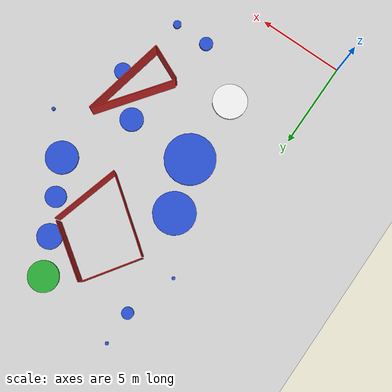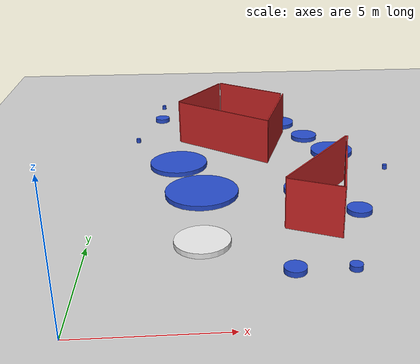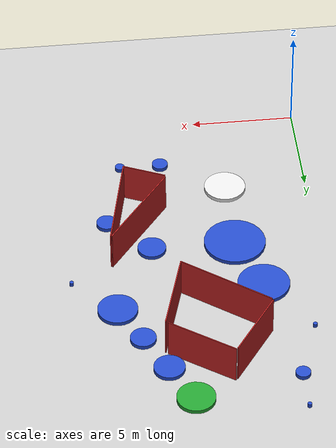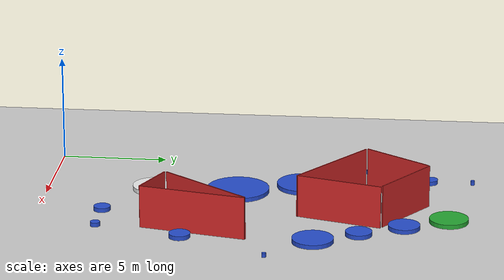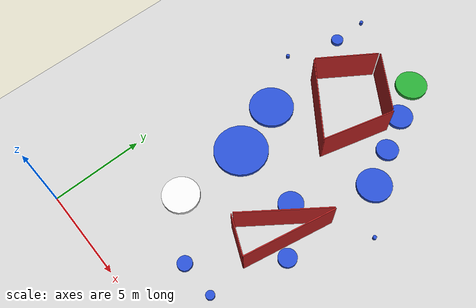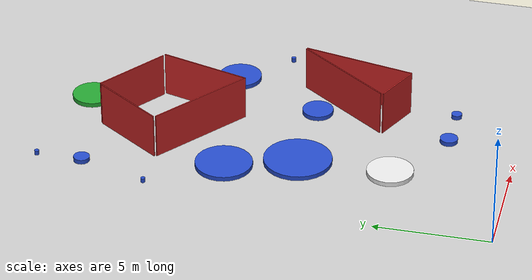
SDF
<?xml version="1.0" ?>
<sdf version="1.5">
  <world name="default">
    <!-- A global light source -->
    <include>
      <uri>model://sun</uri>
    </include>
    <!-- A ground plane -->
    <include>
      <uri>model://ground_plane</uri>
    </include>
    <!-- Camera position -->
    <gui>
      <camera name="user_camera">
        <pose>8.5 11.0 18.0 0.0 1.42 3.14</pose>
      </camera>
    </gui>
    <!-- Ground regions -->
    <model name='region_rA'>
      <pose frame=''>4 5 0.1 0 0 0</pose>
      <link name='link'>
        <collision name='collision'>
          <geometry>
            <cylinder>
              <radius>1.01</radius>
              <length>0.2</length>
            </cylinder>
          </geometry>
        </collision>
        <visual name='visual'>
          <geometry>
            <cylinder>
              <radius>1.01</radius>
              <length>0.2</length>
            </cylinder>
          </geometry>
          <material>
            <script>
              <name>Gazebo/White</name>
              <uri>file://media/materials/scripts/gazebo.material</uri>
            </script>
          </material>
        </visual>
      </link>
    </model>
    <model name='region_rB'>
      <pose frame=''>7 3 0.1 0 0 0</pose>
      <link name='link'>
        <collision name='collision'>
          <geometry>
            <cylinder>
              <radius>0.39</radius>
              <length>0.2</length>
            </cylinder>
          </geometry>
        </collision>
        <visual name='visual'>
          <geometry>
            <cylinder>
              <radius>0.39</radius>
              <length>0.2</length>
            </cylinder>
          </geometry>
          <material>
            <script>
              <name>Gazebo/Blue</name>
              <uri>file://media/materials/scripts/gazebo.material</uri>
            </script>
          </material>
        </visual>
      </link>
    </model>
    <model name='region_rC'>
      <pose frame=''>9 3 0.1 0 0 0</pose>
      <link name='link'>
        <collision name='collision'>
          <geometry>
            <cylinder>
              <radius>0.23</radius>
              <length>0.2</length>
            </cylinder>
          </geometry>
        </collision>
        <visual name='visual'>
          <geometry>
            <cylinder>
              <radius>0.23</radius>
              <length>0.2</length>
            </cylinder>
          </geometry>
          <material>
            <script>
              <name>Gazebo/Blue</name>
              <uri>file://media/materials/scripts/gazebo.material</uri>
            </script>
          </material>
        </visual>
      </link>
    </model>
    <model name='region_rD'>
      <pose frame=''>4 9 0.1 0 0 0</pose>
      <link name='link'>
        <collision name='collision'>
          <geometry>
            <cylinder>
              <radius>1.48</radius>
              <length>0.2</length>
            </cylinder>
          </geometry>
        </collision>
        <visual name='visual'>
          <geometry>
            <cylinder>
              <radius>1.48</radius>
              <length>0.2</length>
            </cylinder>
          </geometry>
          <material>
            <script>
              <name>Gazebo/Blue</name>
              <uri>file://media/materials/scripts/gazebo.material</uri>
            </script>
          </material>
        </visual>
      </link>
    </model>
    <model name='region_rE'>
      <pose frame=''>8 9 0.1 0 0 0</pose>
      <link name='link'>
        <collision name='collision'>
          <geometry>
            <cylinder>
              <radius>0.68</radius>
              <length>0.2</length>
            </cylinder>
          </geometry>
        </collision>
        <visual name='visual'>
          <geometry>
            <cylinder>
              <radius>0.68</radius>
              <length>0.2</length>
            </cylinder>
          </geometry>
          <material>
            <script>
              <name>Gazebo/Blue</name>
              <uri>file://media/materials/scripts/gazebo.material</uri>
            </script>
          </material>
        </visual>
      </link>
    </model>
    <model name='region_rF'>
      <pose frame=''>10 7 0.1 0 0 0</pose>
      <link name='link'>
        <collision name='collision'>
          <geometry>
            <cylinder>
              <radius>0.49</radius>
              <length>0.2</length>
            </cylinder>
          </geometry>
        </collision>
        <visual name='visual'>
          <geometry>
            <cylinder>
              <radius>0.49</radius>
              <length>0.2</length>
            </cylinder>
          </geometry>
          <material>
            <script>
              <name>Gazebo/Blue</name>
              <uri>file://media/materials/scripts/gazebo.material</uri>
            </script>
          </material>
        </visual>
      </link>
    </model>
    <model name='region_rG'>
      <pose frame=''>3 12 0.1 0 0 0</pose>
      <link name='link'>
        <collision name='collision'>
          <geometry>
            <cylinder>
              <radius>1.24</radius>
              <length>0.2</length>
            </cylinder>
          </geometry>
        </collision>
        <visual name='visual'>
          <geometry>
            <cylinder>
              <radius>1.24</radius>
              <length>0.2</length>
            </cylinder>
          </geometry>
          <material>
            <script>
              <name>Gazebo/Blue</name>
              <uri>file://media/materials/scripts/gazebo.material</uri>
            </script>
          </material>
        </visual>
      </link>
    </model>
    <model name='region_rH'>
      <pose frame=''>10 13 0.1 0 0 0</pose>
      <link name='link'>
        <collision name='collision'>
          <geometry>
            <cylinder>
              <radius>0.95</radius>
              <length>0.2</length>
            </cylinder>
          </geometry>
        </collision>
        <visual name='visual'>
          <geometry>
            <cylinder>
              <radius>0.95</radius>
              <length>0.2</length>
            </cylinder>
          </geometry>
          <material>
            <script>
              <name>Gazebo/Blue</name>
              <uri>file://media/materials/scripts/gazebo.material</uri>
            </script>
          </material>
        </visual>
      </link>
    </model>
    <model name='region_rI'>
      <pose frame=''>12 11 0.1 0 0 0</pose>
      <link name='link'>
        <collision name='collision'>
          <geometry>
            <cylinder>
              <radius>0.10</radius>
              <length>0.2</length>
            </cylinder>
          </geometry>
        </collision>
        <visual name='visual'>
          <geometry>
            <cylinder>
              <radius>0.10</radius>
              <length>0.2</length>
            </cylinder>
          </geometry>
          <material>
            <script>
              <name>Gazebo/Blue</name>
              <uri>file://media/materials/scripts/gazebo.material</uri>
            </script>
          </material>
        </visual>
      </link>
    </model>
    <model name='region_rJ'>
      <pose frame=''>1 15 0.1 0 0 0</pose>
      <link name='link'>
        <collision name='collision'>
          <geometry>
            <cylinder>
              <radius>0.10</radius>
              <length>0.2</length>
            </cylinder>
          </geometry>
        </collision>
        <visual name='visual'>
          <geometry>
            <cylinder>
              <radius>0.10</radius>
              <length>0.2</length>
            </cylinder>
          </geometry>
          <material>
            <script>
              <name>Gazebo/Blue</name>
              <uri>file://media/materials/scripts/gazebo.material</uri>
            </script>
          </material>
        </visual>
      </link>
    </model>
    <model name='region_rK'>
      <pose frame=''>9 15 0.1 0 0 0</pose>
      <link name='link'>
        <collision name='collision'>
          <geometry>
            <cylinder>
              <radius>0.61</radius>
              <length>0.2</length>
            </cylinder>
          </geometry>
        </collision>
        <visual name='visual'>
          <geometry>
            <cylinder>
              <radius>0.61</radius>
              <length>0.2</length>
            </cylinder>
          </geometry>
          <material>
            <script>
              <name>Gazebo/Blue</name>
              <uri>file://media/materials/scripts/gazebo.material</uri>
            </script>
          </material>
        </visual>
      </link>
    </model>
    <model name='region_rL'>
      <pose frame=''>2 18 0.1 0 0 0</pose>
      <link name='link'>
        <collision name='collision'>
          <geometry>
            <cylinder>
              <radius>0.35</radius>
              <length>0.2</length>
            </cylinder>
          </geometry>
        </collision>
        <visual name='visual'>
          <geometry>
            <cylinder>
              <radius>0.35</radius>
              <length>0.2</length>
            </cylinder>
          </geometry>
          <material>
            <script>
              <name>Gazebo/Blue</name>
              <uri>file://media/materials/scripts/gazebo.material</uri>
            </script>
          </material>
        </visual>
      </link>
    </model>
    <model name='region_rM'>
      <pose frame=''>8 17 0.1 0 0 0</pose>
      <link name='link'>
        <collision name='collision'>
          <geometry>
            <cylinder>
              <radius>0.73</radius>
              <length>0.2</length>
            </cylinder>
          </geometry>
        </collision>
        <visual name='visual'>
          <geometry>
            <cylinder>
              <radius>0.73</radius>
              <length>0.2</length>
            </cylinder>
          </geometry>
          <material>
            <script>
              <name>Gazebo/Blue</name>
              <uri>file://media/materials/scripts/gazebo.material</uri>
            </script>
          </material>
        </visual>
      </link>
    </model>
    <model name='region_rN'>
      <pose frame=''>2 20 0.1 0 0 0</pose>
      <link name='link'>
        <collision name='collision'>
          <geometry>
            <cylinder>
              <radius>0.10</radius>
              <length>0.2</length>
            </cylinder>
          </geometry>
        </collision>
        <visual name='visual'>
          <geometry>
            <cylinder>
              <radius>0.10</radius>
              <length>0.2</length>
            </cylinder>
          </geometry>
          <material>
            <script>
              <name>Gazebo/Blue</name>
              <uri>file://media/materials/scripts/gazebo.material</uri>
            </script>
          </material>
        </visual>
      </link>
    </model>
    <model name='region_rO'>
      <pose frame=''>7 19 0.1 0 0 0</pose>
      <link name='link'>
        <collision name='collision'>
          <geometry>
            <cylinder>
              <radius>0.90</radius>
              <length>0.2</length>
            </cylinder>
          </geometry>
        </collision>
        <visual name='visual'>
          <geometry>
            <cylinder>
              <radius>0.90</radius>
              <length>0.2</length>
            </cylinder>
          </geometry>
          <material>
            <script>
              <name>Gazebo/Green</name>
              <uri>file://media/materials/scripts/gazebo.material</uri>
            </script>
          </material>
        </visual>
      </link>
    </model>
    <model name='wall_00'>
    <pose frame=''>8.0 5.5 1.0 0 0 1.148</pose>
    <link name='link'>
    <collision name='collision'>
      <geometry>
        <box>
          <size>0.05 2.14 2</size>
        </box>
      </geometry>
    </collision>
    <visual name='visual'>
      <geometry>
        <box>
          <size>0.05 2.14 2</size>
        </box>
      </geometry>
      <material>
        <script>
          <name>Gazebo/Red</name>
          <uri>file://media/materials/scripts/gazebo.material</uri>
        </script>
      </material>
    </visual>
    </link>
    </model>
    <model name='wall_01'>
    <pose frame=''>8.5 8.0 1.0 0 0 -0.643</pose>
    <link name='link'>
    <collision name='collision'>
      <geometry>
        <box>
          <size>0.05 4.90 2</size>
        </box>
      </geometry>
    </collision>
    <visual name='visual'>
      <geometry>
        <box>
          <size>0.05 4.90 2</size>
        </box>
      </geometry>
      <material>
        <script>
          <name>Gazebo/Red</name>
          <uri>file://media/materials/scripts/gazebo.material</uri>
        </script>
      </material>
    </visual>
    </link>
    </model>
    <model name='wall_02'>
    <pose frame=''>9.5 7.5 1.0 0 0 -0.211</pose>
    <link name='link'>
    <collision name='collision'>
      <geometry>
        <box>
          <size>0.05 5.00 2</size>
        </box>
      </geometry>
    </collision>
    <visual name='visual'>
      <geometry>
        <box>
          <size>0.05 5.00 2</size>
        </box>
      </geometry>
      <material>
        <script>
          <name>Gazebo/Red</name>
          <uri>file://media/materials/scripts/gazebo.material</uri>
        </script>
      </material>
    </visual>
    </link>
    </model>
    <model name='wall_10'>
    <pose frame=''>5.0 13.5 1.0 0 0 0.926</pose>
    <link name='link'>
    <collision name='collision'>
      <geometry>
        <box>
          <size>0.05 4.90 2</size>
        </box>
      </geometry>
    </collision>
    <visual name='visual'>
      <geometry>
        <box>
          <size>0.05 4.90 2</size>
        </box>
      </geometry>
      <material>
        <script>
          <name>Gazebo/Red</name>
          <uri>file://media/materials/scripts/gazebo.material</uri>
        </script>
      </material>
    </visual>
    </link>
    </model>
    <model name='wall_11'>
    <pose frame=''>4.0 16.5 1.0 0 0 -0.604</pose>
    <link name='link'>
    <collision name='collision'>
      <geometry>
        <box>
          <size>0.05 3.51 2</size>
        </box>
      </geometry>
    </collision>
    <visual name='visual'>
      <geometry>
        <box>
          <size>0.05 3.51 2</size>
        </box>
      </geometry>
      <material>
        <script>
          <name>Gazebo/Red</name>
          <uri>file://media/materials/scripts/gazebo.material</uri>
        </script>
      </material>
    </visual>
    </link>
    </model>
    <model name='wall_12'>
    <pose frame=''>6.5 17.0 1.0 0 0 0.957</pose>
    <link name='link'>
    <collision name='collision'>
      <geometry>
        <box>
          <size>0.05 3.51 2</size>
        </box>
      </geometry>
    </collision>
    <visual name='visual'>
      <geometry>
        <box>
          <size>0.05 3.51 2</size>
        </box>
      </geometry>
      <material>
        <script>
          <name>Gazebo/Red</name>
          <uri>file://media/materials/scripts/gazebo.material</uri>
        </script>
      </material>
    </visual>
    </link>
    </model>
    <model name='wall_13'>
    <pose frame=''>7.5 14.0 1.0 0 0 -0.282</pose>
    <link name='link'>
    <collision name='collision'>
      <geometry>
        <box>
          <size>0.05 4.02 2</size>
        </box>
      </geometry>
    </collision>
    <visual name='visual'>
      <geometry>
        <box>
          <size>0.05 4.02 2</size>
        </box>
      </geometry>
      <material>
        <script>
          <name>Gazebo/Red</name>
          <uri>file://media/materials/scripts/gazebo.material</uri>
        </script>
      </material>
    </visual>
    </link>
    </model>
  </world>
</sdf>
